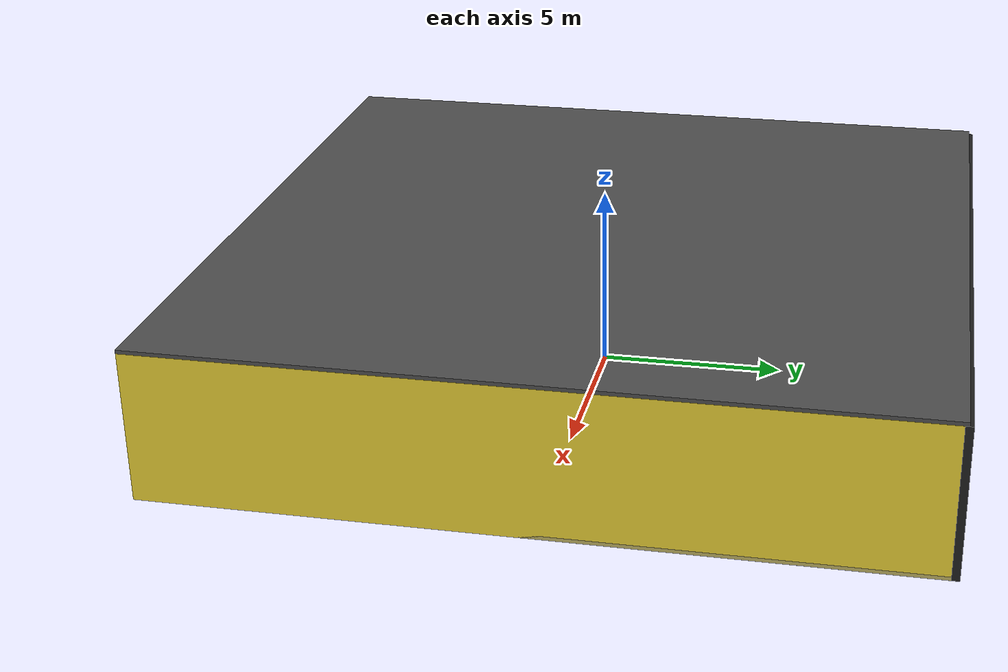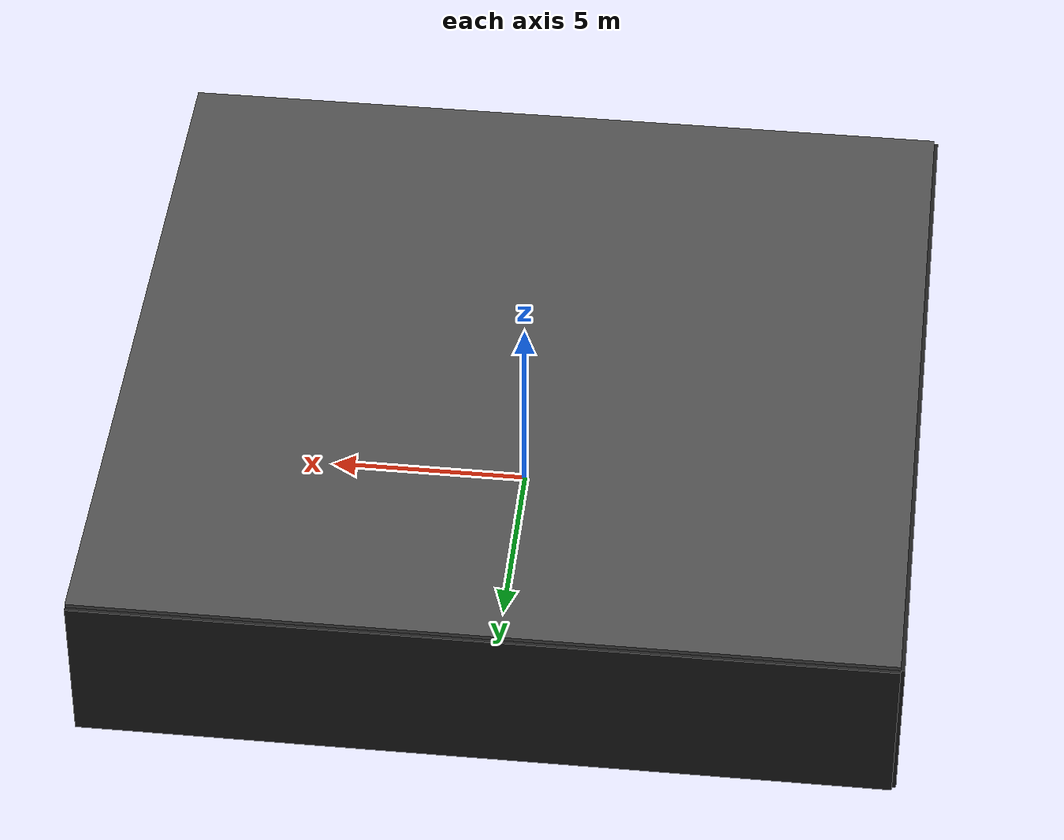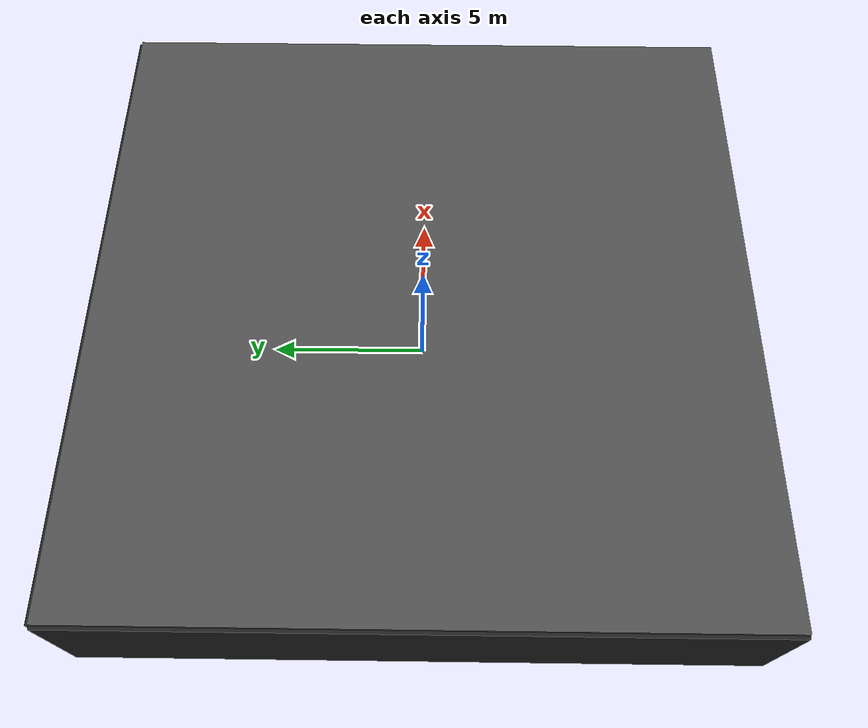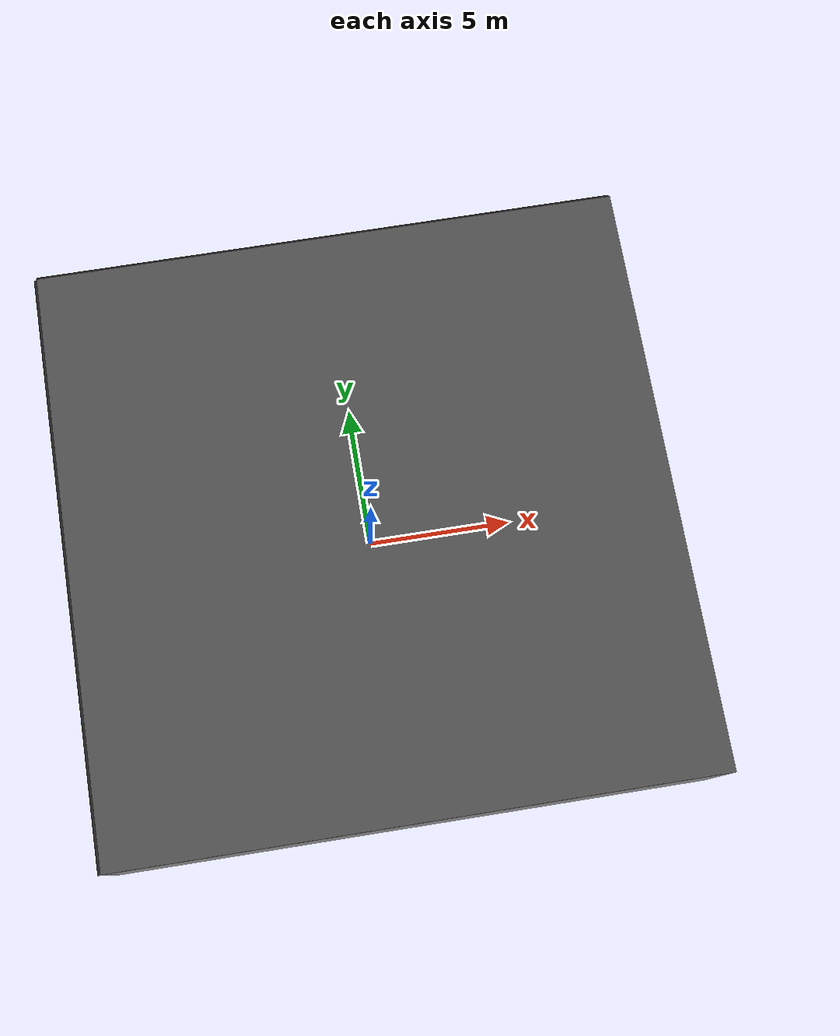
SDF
<sdf version="1.4">
 <world name="default">
  <physics type="ode">
   <max_step_size>0.001</max_step_size>
   <real_time_factor>1</real_time_factor>
   <real_time_update_rate>1000</real_time_update_rate>
   <gravity>0 0 -9.8</gravity>
  </physics>
  <scene><ambient>0.4 0.4 0.4 1</ambient><background>0.7 0.7 0.7 1</background><shadows>1</shadows></scene>
  <model name="Surrounding">
   <static>1</static>
   <link name="Ceiling">
    <collision name="Ceiling_Collision"><geometry><box><size>20 20 0.1</size></box></geometry></collision>
    <visual name="Ceiling_Visual">
     <geometry><box><size>20 20 0.1</size></box></geometry>
     <material>
      <script><uri>file://media/materials/scripts/gazebo.material</uri><name>Gazebo/DarkGrey</name></script>
     </material>
    </visual>
    <pose>0 0 4.05 0 0 0</pose>
   </link>
   <link name="Wall_South">
    <collision name="Wall_South_Collision">
     <geometry><box><size>20 0 4</size></box></geometry>
     <pose>0 0 2 0 -0 0</pose>
    </collision>
    <visual name="Wall_South_Visual">
     <pose>0 0 2 0 -0 0</pose>
     <geometry><box><size>20 0 4</size></box></geometry>
     <material>
      <script><uri>file://media/materials/scripts/gazebo.material</uri><name>Gazebo/GreyGradientSky</name></script>
     </material>
    </visual>
    <velocity_decay><linear>0</linear><angular>0</angular></velocity_decay>
    <pose>0 -10 0 0 -0 0</pose>
   </link>
   <link name="Wall_East">
    <collision name="Wall_21_Collision">
     <geometry><box><size>20 0 4</size></box></geometry>
     <pose>0 0 2 0 -0 0</pose>
    </collision>
    <visual name="Wall_21_Visual">
     <pose>0 0 2 0 -0 0</pose>
     <geometry><box><size>20 0 4</size></box></geometry>
     <material>
      <script><uri>file://media/materials/scripts/gazebo.material</uri><name>Gazebo/ZincYellow</name></script>
     </material>
    </visual>
    <velocity_decay><linear>0</linear><angular>0</angular></velocity_decay>
    <pose>10 0 0 0 -0 1.5708</pose>
   </link>
   <link name="Wall_North">
    <collision name="Wall_22_Collision">
     <geometry><box><size>20 0.2 4</size></box></geometry>
     <pose>0 0 2 0 -0 0</pose>
    </collision>
    <visual name="Wall_22_Visual">
     <pose>0 0 2 0 -0 0</pose>
     <geometry><box><size>20 0.2 4</size></box></geometry>
     <material>
      <script><uri>file://media/materials/scripts/gazebo.material</uri><name>Gazebo/Black</name></script>
     </material>
    </visual>
    <velocity_decay><linear>0</linear><angular>0</angular></velocity_decay>
    <pose>0 10 0 0 -0 0</pose>
   </link>
   <link name="Wall_West">
    <collision name="Wall_23_Collision">
     <geometry><box><size>20 0.2 4</size></box></geometry>
     <pose>0 0 2 0 -0 0</pose>
    </collision>
    <visual name="Wall_23_Visual">
     <pose>0 0 2 0 -0 0</pose>
     <geometry><box><size>20 0.2 4</size></box></geometry>
     <material>
      <script><uri>file://media/materials/scripts/gazebo.material</uri><name>Gazebo/FlatBlack</name></script>
     </material>
    </visual>
    <velocity_decay><linear>0</linear><angular>0</angular></velocity_decay>
    <pose>-10 0 0 0 0 -1.5708</pose>
   </link>
   <link name="Ground_link">
    <collision name="collision">
     <pose>0 0 .05 0 -0 0</pose>
     <geometry><box><size>20 20 0.1</size></box></geometry>
    </collision>
    <visual name="visual">
     <pose>0 0 .05 0 -0 0</pose>
     <geometry><box><size>20 20 0.1</size></box></geometry>
     <material>
      <script><uri>file://media/materials/scripts/gazebo.material</uri><name>Gazebo/GreyTransparent</name></script>
     </material>
    </visual>
   </link>
   <static>1</static>
  </model>
  <spherical_coordinates>
   <surface_model>EARTH_WGS84</surface_model>
   <latitude_deg>0</latitude_deg>
   <longitude_deg>0</longitude_deg>
   <elevation>0</elevation>
   <heading_deg>0</heading_deg>
  </spherical_coordinates>
  <light name="lightball_0" type="diffuse">
   <diffuse>0.8 0.8 0.8 1</diffuse>
   <specular>0.2 0.2 0.2 1</specular>
   <attenuation>
    <range>100</range>
    <constant>0.7</constant>
    <linear>0.01</linear>
    <quadratic>0.001</quadratic>
   </attenuation>
   <direction>-0.5 0.1 -0.9</direction>
   <pose>-0.223280267387 1.36741567234 0.808415980606 0 0 0</pose>
  </light>
  <light name="lightball_1" type="diffuse">
   <diffuse>0.8 0.8 0.8 1</diffuse>
   <specular>0.2 0.2 0.2 1</specular>
   <attenuation>
    <range>100</range>
    <constant>0.7</constant>
    <linear>0.01</linear>
    <quadratic>0.001</quadratic>
   </attenuation>
   <direction>-0.5 0.1 -0.9</direction>
   <pose>-5.47951344547 -2.98973553281 3.88328875005 0 0 0</pose>
  </light>
  <light name="lightball_2" type="diffuse">
   <diffuse>0.8 0.8 0.8 1</diffuse>
   <specular>0.2 0.2 0.2 1</specular>
   <attenuation>
    <range>100</range>
    <constant>0.7</constant>
    <linear>0.01</linear>
    <quadratic>0.001</quadratic>
   </attenuation>
   <direction>-0.5 0.1 -0.9</direction>
   <pose>3.18441330702 -0.515895908586 2.16944240751 0 0 0</pose>
  </light>
  <light name="lightball_3" type="diffuse">
   <diffuse>0.8 0.8 0.8 1</diffuse>
   <specular>0.2 0.2 0.2 1</specular>
   <attenuation>
    <range>100</range>
    <constant>0.7</constant>
    <linear>0.01</linear>
    <quadratic>0.001</quadratic>
   </attenuation>
   <direction>-0.5 0.1 -0.9</direction>
   <pose>-2.27430912218 3.48604345695 3.41227773551 0 0 0</pose>
  </light>
  <light name="lightball_4" type="diffuse">
   <diffuse>0.8 0.8 0.8 1</diffuse>
   <specular>0.2 0.2 0.2 1</specular>
   <attenuation>
    <range>100</range>
    <constant>0.7</constant>
    <linear>0.01</linear>
    <quadratic>0.001</quadratic>
   </attenuation>
   <direction>-0.5 0.1 -0.9</direction>
   <pose>-3.63105558161 4.39942033889 1.33061598568 0 0 0</pose>
  </light>
  <light name="lightball_5" type="diffuse">
   <diffuse>0.8 0.8 0.8 1</diffuse>
   <specular>0.2 0.2 0.2 1</specular>
   <attenuation>
    <range>100</range>
    <constant>0.7</constant>
    <linear>0.01</linear>
    <quadratic>0.001</quadratic>
   </attenuation>
   <direction>-0.5 0.1 -0.9</direction>
   <pose>4.82790588479 5.56226679854 2.70575739845 0 0 0</pose>
  </light>
  <light name="lightball_6" type="diffuse">
   <diffuse>0.8 0.8 0.8 1</diffuse>
   <specular>0.2 0.2 0.2 1</specular>
   <attenuation>
    <range>100</range>
    <constant>0.7</constant>
    <linear>0.01</linear>
    <quadratic>0.001</quadratic>
   </attenuation>
   <direction>-0.5 0.1 -0.9</direction>
   <pose>7.35612743661 -7.97660563403 2.15892053267 0 0 0</pose>
  </light>
  <light name="lightball_7" type="diffuse">
   <diffuse>0.8 0.8 0.8 1</diffuse>
   <specular>0.2 0.2 0.2 1</specular>
   <attenuation>
    <range>100</range>
    <constant>0.7</constant>
    <linear>0.01</linear>
    <quadratic>0.001</quadratic>
   </attenuation>
   <direction>-0.5 0.1 -0.9</direction>
   <pose>1.37951925973 7.55546055499 3.02761051894 0 0 0</pose>
  </light>
  <light name="lightball_8" type="diffuse">
   <diffuse>0.8 0.8 0.8 1</diffuse>
   <specular>0.2 0.2 0.2 1</specular>
   <attenuation>
    <range>100</range>
    <constant>0.7</constant>
    <linear>0.01</linear>
    <quadratic>0.001</quadratic>
   </attenuation>
   <direction>-0.5 0.1 -0.9</direction>
   <pose>-4.61841095446 -1.42863706806 1.16378026731 0 0 0</pose>
  </light>
  <include><uri>model://cabinet</uri><pose>-7.26171369869 5.01864083371 0 0 0 2.48996896248</pose></include>
  <include><uri>model://table</uri><pose>-4.90575752837 2.0145360234 0 0 0 2.24438605192</pose></include>
  <include><uri>model://table</uri><pose>2.15849415756 4.82188541635 0 0 0 2.67576905995</pose></include>
  <include><uri>model://cabinet</uri><pose>7.30886195135 -1.93512912397 0 0 0 1.4152009122</pose></include>
  <include>
   <uri>model://textured_shapes</uri>
   <pose>6.84938134792 4.31971571818 0 0 0 2.22325264454</pose>
  </include>
 </world>
</sdf>

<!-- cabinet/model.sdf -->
<sdf version="1.5">
  <model name="cabinet">
    <static>true</static>
    <link name="cabinet_bottom_plate">
      <inertial>
        <pose>0 0 -1 0 0 0</pose>
        <inertia>
          <ixx>2.050000</ixx>
          <ixy>0</ixy>
          <ixz>0</ixz>
          <iyy>2.050000</iyy>
          <iyz>0</iyz>
          <izz>2.050000</izz>
        </inertia>
        <mass>25.000000</mass>
      </inertial>
      <collision name="cabinet_bottom_plate_geom">
        <pose>0 0 0.010000 0 0 0</pose>
        <geometry>
          <box>
            <size>0.450000 0.450000 0.020000</size>
          </box>
        </geometry>
      </collision>
      <visual name="cabinet_bottom_plate_geom_visual">
        <pose>0 0 0.010000 0 0 0</pose>
        <geometry>
          <box>
            <size>0.450000 0.450000 0.020000</size>
          </box>
        </geometry>
        <material>
          <script>
            <uri>model://media/materials/scripts/gazebo.material</uri>
            <name>Gazebo/Wood</name>
          </script>
        </material>
      </visual>
      <collision name="cabinet_bottom_plate_geom_cabinet_back_plate">
        <pose>0.235000 0 0.510000 0 0 0</pose>
        <geometry>
          <box>
            <size>0.020000 0.450000 1.020000</size>
          </box>
        </geometry>
      </collision>
      <visual name="cabinet_bottom_plate_geom_cabinet_back_plate_visual">
        <pose>0.235000 0 0.510000 0 0 0</pose>
        <geometry>
          <box>
            <size>0.020000 0.450000 1.020000</size>
          </box>
        </geometry>
        <material>
          <script>
            <uri>model://media/materials/scripts/gazebo.material</uri>
            <name>Gazebo/Wood</name>
          </script>
        </material>
      </visual>
      <collision name="cabinet_bottom_plate_geom_cabinet_left_plate">
        <pose>0 0.235000 0.510000 0 0 0</pose>
        <geometry>
          <box>
            <size>0.450000 0.020000 1.020000</size>
          </box>
        </geometry>
      </collision>
      <visual name="cabinet_bottom_plate_geom_cabinet_left_plate_visual">
        <pose>0 0.235000 0.510000 0 0 0</pose>
        <geometry>
          <box>
            <size>0.450000 0.020000 1.020000</size>
          </box>
        </geometry>
        <material>
          <script>
            <uri>model://media/materials/scripts/gazebo.material</uri>
            <name>Gazebo/Wood</name>
          </script>
        </material>
      </visual>
      <collision name="cabinet_bottom_plate_geom_cabinet_middle_plate">
        <pose>0 0 0.510000 0 0 0</pose>
        <geometry>
          <box>
            <size>0.450000 0.450000 0.020000</size>
          </box>
        </geometry>
      </collision>
      <visual name="cabinet_bottom_plate_geom_cabinet_middle_plate_visual">
        <pose>0 0 0.510000 0 0 0</pose>
        <geometry>
          <box>
            <size>0.450000 0.450000 0.020000</size>
          </box>
        </geometry>
        <material>
          <script>
            <uri>model://media/materials/scripts/gazebo.material</uri>
            <name>Gazebo/Wood</name>
          </script>
        </material>
      </visual>
      <collision name="cabinet_bottom_plate_geom_cabinet_right_plate">
        <pose>0 -0.235000 0.510000 0 0 0</pose>
        <geometry>
          <box>
            <size>0.450000 0.020000 1.020000</size>
          </box>
        </geometry>
      </collision>
      <visual name="cabinet_bottom_plate_geom_cabinet_right_plate_visual">
        <pose>0 -0.235000 0.510000 0 0 0</pose>
        <geometry>
          <box>
            <size>0.450000 0.020000 1.020000</size>
          </box>
        </geometry>
        <material>
          <script>
            <uri>model://media/materials/scripts/gazebo.material</uri>
            <name>Gazebo/Wood</name>
          </script>
        </material>
      </visual>
      <collision name="cabinet_bottom_plate_geom_cabinet_top_plate">
        <pose>0 0 1.010000 0 0 0</pose>
        <geometry>
          <box>
            <size>0.450000 0.450000 0.020000</size>
          </box>
        </geometry>
      </collision>
      <visual name="cabinet_bottom_plate_geom_cabinet_top_plate_visual">
        <pose>0 0 1.010000 0 0 0</pose>
        <geometry>
          <box>
            <size>0.450000 0.450000 0.020000</size>
          </box>
        </geometry>
        <material>
          <script>
            <uri>model://media/materials/scripts/gazebo.material</uri>
            <name>Gazebo/Wood</name>
          </script>
        </material>
      </visual>
    </link>
  </model>
</sdf>

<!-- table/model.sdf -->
<sdf version="1.5">
  <model name="table">
    <static>true</static>
    <link name="link">
      <collision name="surface">
        <pose>0 0 1.0 0 0 0</pose>
        <geometry>
          <box>
            <size>1.5 0.8 0.03</size>
          </box>
        </geometry>
        <surface>
          <friction>
            <ode>
              <mu>0.6</mu>
              <mu2>0.6</mu2>
            </ode>
          </friction>
        </surface>
      </collision>
      <visual name="visual1">
        <pose>0 0 1.0 0 0 0</pose>
        <geometry>
          <box>
            <size>1.5 0.8 0.03</size>
          </box>
        </geometry>
        <material>
          <script>
            <uri>model://media/materials/scripts/gazebo.material</uri>
            <name>Gazebo/Wood</name>
          </script>
        </material>
      </visual>
      <collision name="front_left_leg">
        <pose>0.68 0.38 0.5 0 0 0</pose>
        <geometry>
          <cylinder>
            <radius>0.02</radius>
            <length>1.0</length>
          </cylinder>
        </geometry>
      </collision>
      <visual name="front_left_leg">
        <pose>0.68 0.38 0.5 0 0 0</pose>
        <geometry>
          <cylinder>
            <radius>0.02</radius>
            <length>1.0</length>
          </cylinder>
        </geometry>
        <material>
          <script>
            <uri>model://media/materials/scripts/gazebo.material</uri>
            <name>Gazebo/Grey</name>
          </script>
        </material>
      </visual>
      <collision name="front_right_leg">
        <pose>0.68 -0.38 0.5 0 0 0</pose>
        <geometry>
          <cylinder>
            <radius>0.02</radius>
            <length>1.0</length>
          </cylinder>
        </geometry>
      </collision>
      <visual name="front_right_leg">
        <pose>0.68 -0.38 0.5 0 0 0</pose>
        <geometry>
          <cylinder>
            <radius>0.02</radius>
            <length>1.0</length>
          </cylinder>
        </geometry>
        <material>
          <script>
            <uri>model://media/materials/scripts/gazebo.material</uri>
            <name>Gazebo/Grey</name>
          </script>
        </material>
      </visual>
      <collision name="back_right_leg">
        <pose>-0.68 -0.38 0.5 0 0 0</pose>
        <geometry>
          <cylinder>
            <radius>0.02</radius>
            <length>1.0</length>
          </cylinder>
        </geometry>
      </collision>
      <visual name="back_right_leg">
        <pose>-0.68 -0.38 0.5 0 0 0</pose>
        <geometry>
          <cylinder>
            <radius>0.02</radius>
            <length>1.0</length>
          </cylinder>
        </geometry>
        <material>
          <script>
            <uri>model://media/materials/scripts/gazebo.material</uri>
            <name>Gazebo/Grey</name>
          </script>
        </material>
      </visual>
      <collision name="back_left_leg">
        <pose>-0.68 0.38 0.5 0 0 0</pose>
        <geometry>
          <cylinder>
            <radius>0.02</radius>
            <length>1.0</length>
          </cylinder>
        </geometry>
      </collision>
      <visual name="back_left_leg">
        <pose>-0.68 0.38 0.5 0 0 0</pose>
        <geometry>
          <cylinder>
            <radius>0.02</radius>
            <length>1.0</length>
          </cylinder>
        </geometry>
        <material>
          <script>
            <uri>model://media/materials/scripts/gazebo.material</uri>
            <name>Gazebo/Grey</name>
          </script>
        </material>
      </visual>
    </link>
  </model>
</sdf>

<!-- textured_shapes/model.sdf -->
<sdf version="1.6">
  <model name="textured_shapes">
    <pose>0 0 0.5 0 0 0</pose>
    <link name="box">
      <pose>0 -1.5 0 0 0 0</pose>
      <collision name="collision">
        <geometry>
          <box>
            <size>1 1 1</size>
          </box>
        </geometry>
      </collision>
      <visual name="visual">
        <geometry>
          <box>
            <size>1 1 1</size>
          </box>
        </geometry>
        <material>
          <script>
            <uri>model://../model_source/models/textured_shapes/materials/scripts</uri>
            <uri>model://../model_source/models/textured_shapes/materials/textures</uri>
            <name>TexturedShape/Squares</name>
          </script>
        </material>
      </visual>
    </link>
    <link name="sphere">
      <collision name="collision">
        <geometry>
          <sphere>
            <radius>0.5</radius>
          </sphere>
        </geometry>
      </collision>
      <visual name="visual">
        <geometry>
          <sphere>
            <radius>0.5</radius>
          </sphere>
        </geometry>
        <material>
          <script>
            <uri>model://../model_source/models/textured_shapes/materials/scripts</uri>
            <uri>model://../model_source/models/textured_shapes/materials/textures</uri>
            <name>TexturedShape/Squares</name>
          </script>
        </material>
      </visual>
    </link>
    <link name="cylinder">
      <pose>0 1.5 0 0 0 0</pose>
      <collision name="collision">
        <geometry>
          <cylinder>
            <radius>0.5</radius>
            <length>1</length>
          </cylinder>
        </geometry>
      </collision>
      <visual name="visual">
        <geometry>
          <cylinder>
            <radius>0.5</radius>
            <length>1</length>
          </cylinder>
        </geometry>
        <material>
          <script>
            <uri>model://../model_source/models/textured_shapes/materials/scripts</uri>
            <uri>model://../model_source/models/textured_shapes/materials/textures</uri>
            <name>TexturedShape/Squares</name>
          </script>
        </material>
      </visual>
    </link>
  </model>
</sdf>
